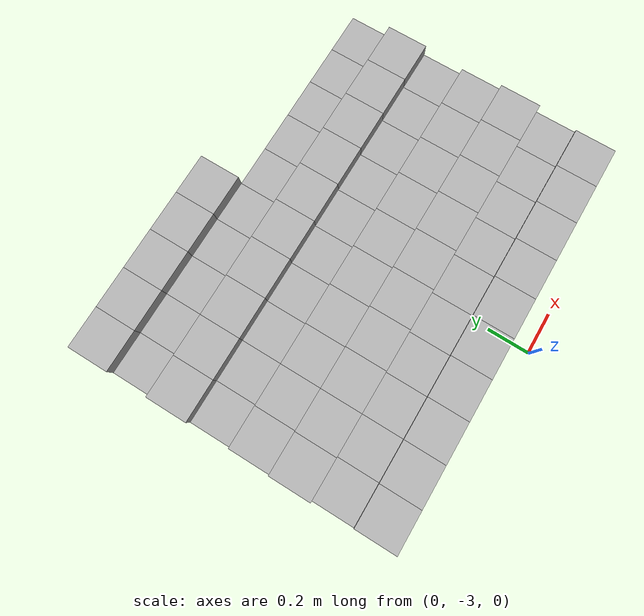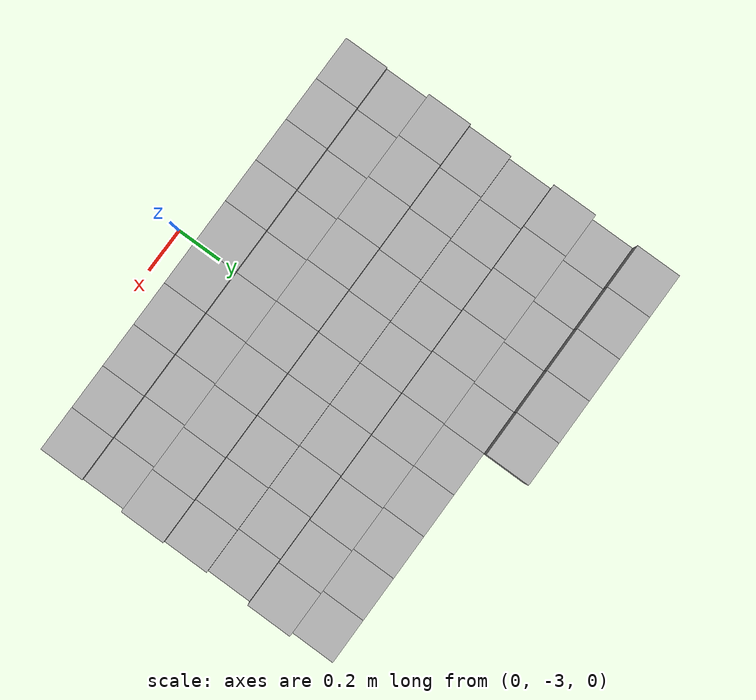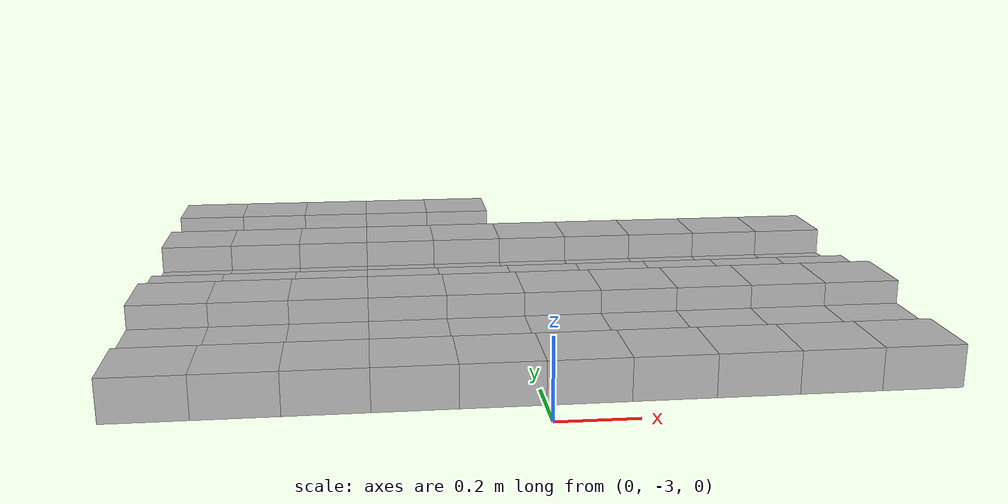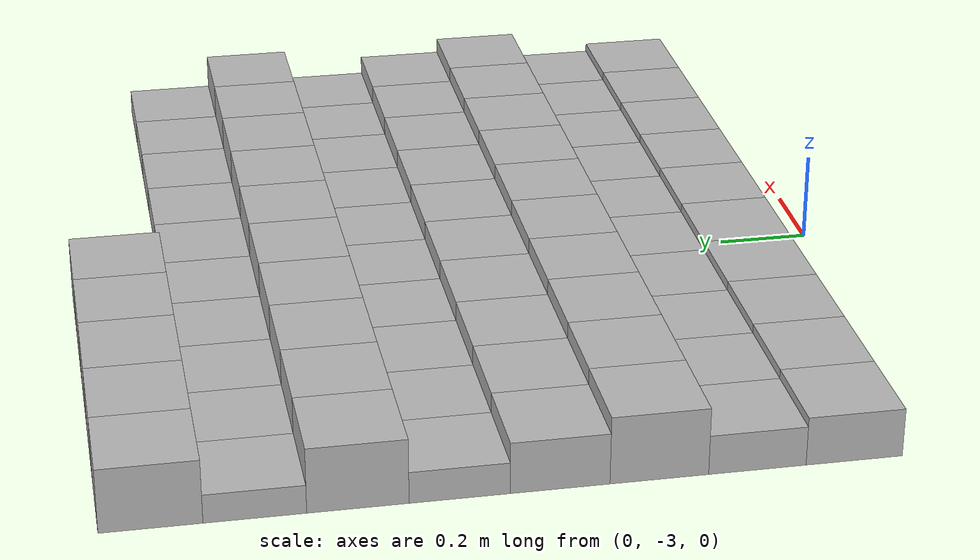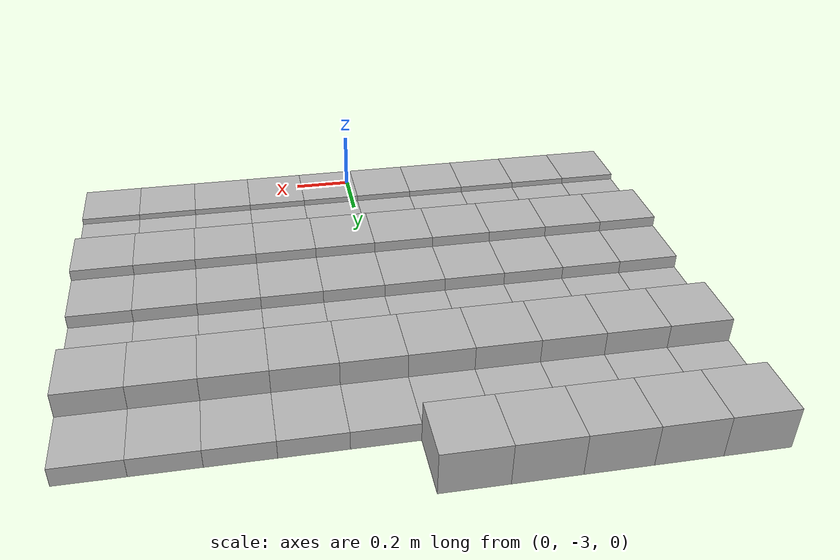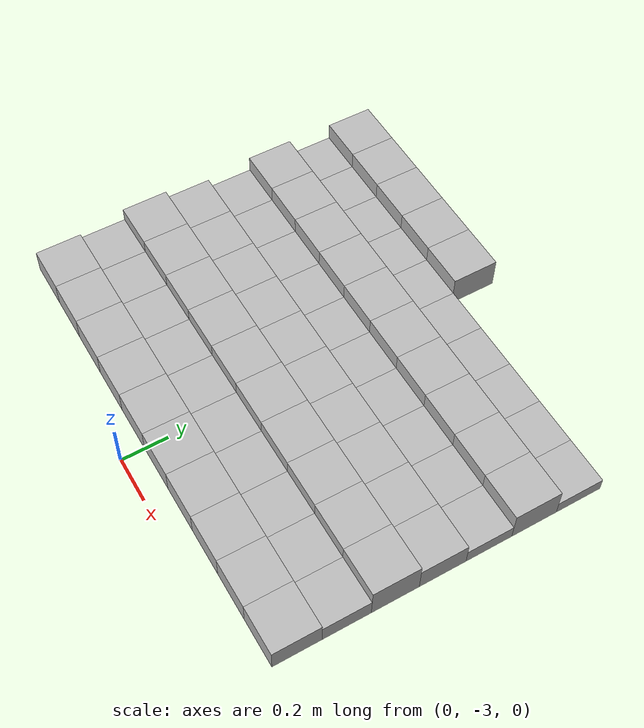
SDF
<sdf version="1.6">
 <model name="Terrain">
  <static>true</static>
  <link name="box_7_0">
   <pose>-0.9 -1.4 0.0700994147402 0 0 0</pose>
   <inertial>
    <mass>1.0</mass>
    <inertia><ixx>0.0</ixx><ixy>0.0</ixy><ixz>0.0</ixz><iyy>0.0</iyy><iyz>0.0</iyz><izz>0.0</izz></inertia>
   </inertial>
   <collision name="collision"><geometry><box><size>0.2 0.2 0.14019882948</size></box></geometry></collision>
   <visual name="visual"><geometry><box><size>0.2 0.2 0.14019882948</size></box></geometry></visual>
  </link>
  <link name="box_7_1">
   <pose>-0.7 -1.4 0.0700994147402 0 0 0</pose>
   <inertial>
    <mass>1.0</mass>
    <inertia><ixx>0.0</ixx><ixy>0.0</ixy><ixz>0.0</ixz><iyy>0.0</iyy><iyz>0.0</iyz><izz>0.0</izz></inertia>
   </inertial>
   <collision name="collision"><geometry><box><size>0.2 0.2 0.14019882948</size></box></geometry></collision>
   <visual name="visual"><geometry><box><size>0.2 0.2 0.14019882948</size></box></geometry></visual>
  </link>
  <link name="box_7_2">
   <pose>-0.5 -1.4 0.0700994147402 0 0 0</pose>
   <inertial>
    <mass>1.0</mass>
    <inertia><ixx>0.0</ixx><ixy>0.0</ixy><ixz>0.0</ixz><iyy>0.0</iyy><iyz>0.0</iyz><izz>0.0</izz></inertia>
   </inertial>
   <collision name="collision"><geometry><box><size>0.2 0.2 0.14019882948</size></box></geometry></collision>
   <visual name="visual"><geometry><box><size>0.2 0.2 0.14019882948</size></box></geometry></visual>
  </link>
  <link name="box_7_3">
   <pose>-0.3 -1.4 0.0700994147402 0 0 0</pose>
   <inertial>
    <mass>1.0</mass>
    <inertia><ixx>0.0</ixx><ixy>0.0</ixy><ixz>0.0</ixz><iyy>0.0</iyy><iyz>0.0</iyz><izz>0.0</izz></inertia>
   </inertial>
   <collision name="collision"><geometry><box><size>0.2 0.2 0.14019882948</size></box></geometry></collision>
   <visual name="visual"><geometry><box><size>0.2 0.2 0.14019882948</size></box></geometry></visual>
  </link>
  <link name="box_7_4">
   <pose>-0.1 -1.4 0.0700994147402 0 0 0</pose>
   <inertial>
    <mass>1.0</mass>
    <inertia><ixx>0.0</ixx><ixy>0.0</ixy><ixz>0.0</ixz><iyy>0.0</iyy><iyz>0.0</iyz><izz>0.0</izz></inertia>
   </inertial>
   <collision name="collision"><geometry><box><size>0.2 0.2 0.14019882948</size></box></geometry></collision>
   <visual name="visual"><geometry><box><size>0.2 0.2 0.14019882948</size></box></geometry></visual>
  </link>
  <link name="box_8_0">
   <pose>-0.9 -1.6 0.0313570824561 0 0 0</pose>
   <inertial>
    <mass>1.0</mass>
    <inertia><ixx>0.0</ixx><ixy>0.0</ixy><ixz>0.0</ixz><iyy>0.0</iyy><iyz>0.0</iyz><izz>0.0</izz></inertia>
   </inertial>
   <collision name="collision"><geometry><box><size>0.2 0.2 0.0627141649123</size></box></geometry></collision>
   <visual name="visual"><geometry><box><size>0.2 0.2 0.0627141649123</size></box></geometry></visual>
  </link>
  <link name="box_8_1">
   <pose>-0.7 -1.6 0.0313570824561 0 0 0</pose>
   <inertial>
    <mass>1.0</mass>
    <inertia><ixx>0.0</ixx><ixy>0.0</ixy><ixz>0.0</ixz><iyy>0.0</iyy><iyz>0.0</iyz><izz>0.0</izz></inertia>
   </inertial>
   <collision name="collision"><geometry><box><size>0.2 0.2 0.0627141649123</size></box></geometry></collision>
   <visual name="visual"><geometry><box><size>0.2 0.2 0.0627141649123</size></box></geometry></visual>
  </link>
  <link name="box_8_2">
   <pose>-0.5 -1.6 0.0313570824561 0 0 0</pose>
   <inertial>
    <mass>1.0</mass>
    <inertia><ixx>0.0</ixx><ixy>0.0</ixy><ixz>0.0</ixz><iyy>0.0</iyy><iyz>0.0</iyz><izz>0.0</izz></inertia>
   </inertial>
   <collision name="collision"><geometry><box><size>0.2 0.2 0.0627141649123</size></box></geometry></collision>
   <visual name="visual"><geometry><box><size>0.2 0.2 0.0627141649123</size></box></geometry></visual>
  </link>
  <link name="box_8_3">
   <pose>-0.3 -1.6 0.0313570824561 0 0 0</pose>
   <inertial>
    <mass>1.0</mass>
    <inertia><ixx>0.0</ixx><ixy>0.0</ixy><ixz>0.0</ixz><iyy>0.0</iyy><iyz>0.0</iyz><izz>0.0</izz></inertia>
   </inertial>
   <collision name="collision"><geometry><box><size>0.2 0.2 0.0627141649123</size></box></geometry></collision>
   <visual name="visual"><geometry><box><size>0.2 0.2 0.0627141649123</size></box></geometry></visual>
  </link>
  <link name="box_8_4">
   <pose>-0.1 -1.6 0.0313570824561 0 0 0</pose>
   <inertial>
    <mass>1.0</mass>
    <inertia><ixx>0.0</ixx><ixy>0.0</ixy><ixz>0.0</ixz><iyy>0.0</iyy><iyz>0.0</iyz><izz>0.0</izz></inertia>
   </inertial>
   <collision name="collision"><geometry><box><size>0.2 0.2 0.0627141649123</size></box></geometry></collision>
   <visual name="visual"><geometry><box><size>0.2 0.2 0.0627141649123</size></box></geometry></visual>
  </link>
  <link name="box_8_5">
   <pose>0.1 -1.6 0.0313570824561 0 0 0</pose>
   <inertial>
    <mass>1.0</mass>
    <inertia><ixx>0.0</ixx><ixy>0.0</ixy><ixz>0.0</ixz><iyy>0.0</iyy><iyz>0.0</iyz><izz>0.0</izz></inertia>
   </inertial>
   <collision name="collision"><geometry><box><size>0.2 0.2 0.0627141649123</size></box></geometry></collision>
   <visual name="visual"><geometry><box><size>0.2 0.2 0.0627141649123</size></box></geometry></visual>
  </link>
  <link name="box_8_6">
   <pose>0.3 -1.6 0.0313570824561 0 0 0</pose>
   <inertial>
    <mass>1.0</mass>
    <inertia><ixx>0.0</ixx><ixy>0.0</ixy><ixz>0.0</ixz><iyy>0.0</iyy><iyz>0.0</iyz><izz>0.0</izz></inertia>
   </inertial>
   <collision name="collision"><geometry><box><size>0.2 0.2 0.0627141649123</size></box></geometry></collision>
   <visual name="visual"><geometry><box><size>0.2 0.2 0.0627141649123</size></box></geometry></visual>
  </link>
  <link name="box_8_7">
   <pose>0.5 -1.6 0.0313570824561 0 0 0</pose>
   <inertial>
    <mass>1.0</mass>
    <inertia><ixx>0.0</ixx><ixy>0.0</ixy><ixz>0.0</ixz><iyy>0.0</iyy><iyz>0.0</iyz><izz>0.0</izz></inertia>
   </inertial>
   <collision name="collision"><geometry><box><size>0.2 0.2 0.0627141649123</size></box></geometry></collision>
   <visual name="visual"><geometry><box><size>0.2 0.2 0.0627141649123</size></box></geometry></visual>
  </link>
  <link name="box_8_8">
   <pose>0.7 -1.6 0.0313570824561 0 0 0</pose>
   <inertial>
    <mass>1.0</mass>
    <inertia><ixx>0.0</ixx><ixy>0.0</ixy><ixz>0.0</ixz><iyy>0.0</iyy><iyz>0.0</iyz><izz>0.0</izz></inertia>
   </inertial>
   <collision name="collision"><geometry><box><size>0.2 0.2 0.0627141649123</size></box></geometry></collision>
   <visual name="visual"><geometry><box><size>0.2 0.2 0.0627141649123</size></box></geometry></visual>
  </link>
  <link name="box_8_9">
   <pose>0.9 -1.6 0.0313570824561 0 0 0</pose>
   <inertial>
    <mass>1.0</mass>
    <inertia><ixx>0.0</ixx><ixy>0.0</ixy><ixz>0.0</ixz><iyy>0.0</iyy><iyz>0.0</iyz><izz>0.0</izz></inertia>
   </inertial>
   <collision name="collision"><geometry><box><size>0.2 0.2 0.0627141649123</size></box></geometry></collision>
   <visual name="visual"><geometry><box><size>0.2 0.2 0.0627141649123</size></box></geometry></visual>
  </link>
  <link name="box_9_0">
   <pose>-0.9 -1.8 0.0717361345322 0 0 0</pose>
   <inertial>
    <mass>1.0</mass>
    <inertia><ixx>0.0</ixx><ixy>0.0</ixy><ixz>0.0</ixz><iyy>0.0</iyy><iyz>0.0</iyz><izz>0.0</izz></inertia>
   </inertial>
   <collision name="collision"><geometry><box><size>0.2 0.2 0.143472269064</size></box></geometry></collision>
   <visual name="visual"><geometry><box><size>0.2 0.2 0.143472269064</size></box></geometry></visual>
  </link>
  <link name="box_9_1">
   <pose>-0.7 -1.8 0.0717361345322 0 0 0</pose>
   <inertial>
    <mass>1.0</mass>
    <inertia><ixx>0.0</ixx><ixy>0.0</ixy><ixz>0.0</ixz><iyy>0.0</iyy><iyz>0.0</iyz><izz>0.0</izz></inertia>
   </inertial>
   <collision name="collision"><geometry><box><size>0.2 0.2 0.143472269064</size></box></geometry></collision>
   <visual name="visual"><geometry><box><size>0.2 0.2 0.143472269064</size></box></geometry></visual>
  </link>
  <link name="box_9_2">
   <pose>-0.5 -1.8 0.0717361345322 0 0 0</pose>
   <inertial>
    <mass>1.0</mass>
    <inertia><ixx>0.0</ixx><ixy>0.0</ixy><ixz>0.0</ixz><iyy>0.0</iyy><iyz>0.0</iyz><izz>0.0</izz></inertia>
   </inertial>
   <collision name="collision"><geometry><box><size>0.2 0.2 0.143472269064</size></box></geometry></collision>
   <visual name="visual"><geometry><box><size>0.2 0.2 0.143472269064</size></box></geometry></visual>
  </link>
  <link name="box_9_3">
   <pose>-0.3 -1.8 0.0717361345322 0 0 0</pose>
   <inertial>
    <mass>1.0</mass>
    <inertia><ixx>0.0</ixx><ixy>0.0</ixy><ixz>0.0</ixz><iyy>0.0</iyy><iyz>0.0</iyz><izz>0.0</izz></inertia>
   </inertial>
   <collision name="collision"><geometry><box><size>0.2 0.2 0.143472269064</size></box></geometry></collision>
   <visual name="visual"><geometry><box><size>0.2 0.2 0.143472269064</size></box></geometry></visual>
  </link>
  <link name="box_9_4">
   <pose>-0.1 -1.8 0.0717361345322 0 0 0</pose>
   <inertial>
    <mass>1.0</mass>
    <inertia><ixx>0.0</ixx><ixy>0.0</ixy><ixz>0.0</ixz><iyy>0.0</iyy><iyz>0.0</iyz><izz>0.0</izz></inertia>
   </inertial>
   <collision name="collision"><geometry><box><size>0.2 0.2 0.143472269064</size></box></geometry></collision>
   <visual name="visual"><geometry><box><size>0.2 0.2 0.143472269064</size></box></geometry></visual>
  </link>
  <link name="box_9_5">
   <pose>0.1 -1.8 0.0717361345322 0 0 0</pose>
   <inertial>
    <mass>1.0</mass>
    <inertia><ixx>0.0</ixx><ixy>0.0</ixy><ixz>0.0</ixz><iyy>0.0</iyy><iyz>0.0</iyz><izz>0.0</izz></inertia>
   </inertial>
   <collision name="collision"><geometry><box><size>0.2 0.2 0.143472269064</size></box></geometry></collision>
   <visual name="visual"><geometry><box><size>0.2 0.2 0.143472269064</size></box></geometry></visual>
  </link>
  <link name="box_9_6">
   <pose>0.3 -1.8 0.0717361345322 0 0 0</pose>
   <inertial>
    <mass>1.0</mass>
    <inertia><ixx>0.0</ixx><ixy>0.0</ixy><ixz>0.0</ixz><iyy>0.0</iyy><iyz>0.0</iyz><izz>0.0</izz></inertia>
   </inertial>
   <collision name="collision"><geometry><box><size>0.2 0.2 0.143472269064</size></box></geometry></collision>
   <visual name="visual"><geometry><box><size>0.2 0.2 0.143472269064</size></box></geometry></visual>
  </link>
  <link name="box_9_7">
   <pose>0.5 -1.8 0.0717361345322 0 0 0</pose>
   <inertial>
    <mass>1.0</mass>
    <inertia><ixx>0.0</ixx><ixy>0.0</ixy><ixz>0.0</ixz><iyy>0.0</iyy><iyz>0.0</iyz><izz>0.0</izz></inertia>
   </inertial>
   <collision name="collision"><geometry><box><size>0.2 0.2 0.143472269064</size></box></geometry></collision>
   <visual name="visual"><geometry><box><size>0.2 0.2 0.143472269064</size></box></geometry></visual>
  </link>
  <link name="box_9_8">
   <pose>0.7 -1.8 0.0717361345322 0 0 0</pose>
   <inertial>
    <mass>1.0</mass>
    <inertia><ixx>0.0</ixx><ixy>0.0</ixy><ixz>0.0</ixz><iyy>0.0</iyy><iyz>0.0</iyz><izz>0.0</izz></inertia>
   </inertial>
   <collision name="collision"><geometry><box><size>0.2 0.2 0.143472269064</size></box></geometry></collision>
   <visual name="visual"><geometry><box><size>0.2 0.2 0.143472269064</size></box></geometry></visual>
  </link>
  <link name="box_9_9">
   <pose>0.9 -1.8 0.0717361345322 0 0 0</pose>
   <inertial>
    <mass>1.0</mass>
    <inertia><ixx>0.0</ixx><ixy>0.0</ixy><ixz>0.0</ixz><iyy>0.0</iyy><iyz>0.0</iyz><izz>0.0</izz></inertia>
   </inertial>
   <collision name="collision"><geometry><box><size>0.2 0.2 0.143472269064</size></box></geometry></collision>
   <visual name="visual"><geometry><box><size>0.2 0.2 0.143472269064</size></box></geometry></visual>
  </link>
  <link name="box_10_0">
   <pose>-0.9 -2.0 0.0347215386075 0 0 0</pose>
   <inertial>
    <mass>1.0</mass>
    <inertia><ixx>0.0</ixx><ixy>0.0</ixy><ixz>0.0</ixz><iyy>0.0</iyy><iyz>0.0</iyz><izz>0.0</izz></inertia>
   </inertial>
   <collision name="collision"><geometry><box><size>0.2 0.2 0.069443077215</size></box></geometry></collision>
   <visual name="visual"><geometry><box><size>0.2 0.2 0.069443077215</size></box></geometry></visual>
  </link>
  <link name="box_10_1">
   <pose>-0.7 -2.0 0.0347215386075 0 0 0</pose>
   <inertial>
    <mass>1.0</mass>
    <inertia><ixx>0.0</ixx><ixy>0.0</ixy><ixz>0.0</ixz><iyy>0.0</iyy><iyz>0.0</iyz><izz>0.0</izz></inertia>
   </inertial>
   <collision name="collision"><geometry><box><size>0.2 0.2 0.069443077215</size></box></geometry></collision>
   <visual name="visual"><geometry><box><size>0.2 0.2 0.069443077215</size></box></geometry></visual>
  </link>
  <link name="box_10_2">
   <pose>-0.5 -2.0 0.0347215386075 0 0 0</pose>
   <inertial>
    <mass>1.0</mass>
    <inertia><ixx>0.0</ixx><ixy>0.0</ixy><ixz>0.0</ixz><iyy>0.0</iyy><iyz>0.0</iyz><izz>0.0</izz></inertia>
   </inertial>
   <collision name="collision"><geometry><box><size>0.2 0.2 0.069443077215</size></box></geometry></collision>
   <visual name="visual"><geometry><box><size>0.2 0.2 0.069443077215</size></box></geometry></visual>
  </link>
  <link name="box_10_3">
   <pose>-0.3 -2.0 0.0347215386075 0 0 0</pose>
   <inertial>
    <mass>1.0</mass>
    <inertia><ixx>0.0</ixx><ixy>0.0</ixy><ixz>0.0</ixz><iyy>0.0</iyy><iyz>0.0</iyz><izz>0.0</izz></inertia>
   </inertial>
   <collision name="collision"><geometry><box><size>0.2 0.2 0.069443077215</size></box></geometry></collision>
   <visual name="visual"><geometry><box><size>0.2 0.2 0.069443077215</size></box></geometry></visual>
  </link>
  <link name="box_10_4">
   <pose>-0.1 -2.0 0.0347215386075 0 0 0</pose>
   <inertial>
    <mass>1.0</mass>
    <inertia><ixx>0.0</ixx><ixy>0.0</ixy><ixz>0.0</ixz><iyy>0.0</iyy><iyz>0.0</iyz><izz>0.0</izz></inertia>
   </inertial>
   <collision name="collision"><geometry><box><size>0.2 0.2 0.069443077215</size></box></geometry></collision>
   <visual name="visual"><geometry><box><size>0.2 0.2 0.069443077215</size></box></geometry></visual>
  </link>
  <link name="box_10_5">
   <pose>0.1 -2.0 0.0347215386075 0 0 0</pose>
   <inertial>
    <mass>1.0</mass>
    <inertia><ixx>0.0</ixx><ixy>0.0</ixy><ixz>0.0</ixz><iyy>0.0</iyy><iyz>0.0</iyz><izz>0.0</izz></inertia>
   </inertial>
   <collision name="collision"><geometry><box><size>0.2 0.2 0.069443077215</size></box></geometry></collision>
   <visual name="visual"><geometry><box><size>0.2 0.2 0.069443077215</size></box></geometry></visual>
  </link>
  <link name="box_10_6">
   <pose>0.3 -2.0 0.0347215386075 0 0 0</pose>
   <inertial>
    <mass>1.0</mass>
    <inertia><ixx>0.0</ixx><ixy>0.0</ixy><ixz>0.0</ixz><iyy>0.0</iyy><iyz>0.0</iyz><izz>0.0</izz></inertia>
   </inertial>
   <collision name="collision"><geometry><box><size>0.2 0.2 0.069443077215</size></box></geometry></collision>
   <visual name="visual"><geometry><box><size>0.2 0.2 0.069443077215</size></box></geometry></visual>
  </link>
  <link name="box_10_7">
   <pose>0.5 -2.0 0.0347215386075 0 0 0</pose>
   <inertial>
    <mass>1.0</mass>
    <inertia><ixx>0.0</ixx><ixy>0.0</ixy><ixz>0.0</ixz><iyy>0.0</iyy><iyz>0.0</iyz><izz>0.0</izz></inertia>
   </inertial>
   <collision name="collision"><geometry><box><size>0.2 0.2 0.069443077215</size></box></geometry></collision>
   <visual name="visual"><geometry><box><size>0.2 0.2 0.069443077215</size></box></geometry></visual>
  </link>
  <link name="box_10_8">
   <pose>0.7 -2.0 0.0347215386075 0 0 0</pose>
   <inertial>
    <mass>1.0</mass>
    <inertia><ixx>0.0</ixx><ixy>0.0</ixy><ixz>0.0</ixz><iyy>0.0</iyy><iyz>0.0</iyz><izz>0.0</izz></inertia>
   </inertial>
   <collision name="collision"><geometry><box><size>0.2 0.2 0.069443077215</size></box></geometry></collision>
   <visual name="visual"><geometry><box><size>0.2 0.2 0.069443077215</size></box></geometry></visual>
  </link>
  <link name="box_10_9">
   <pose>0.9 -2.0 0.0347215386075 0 0 0</pose>
   <inertial>
    <mass>1.0</mass>
    <inertia><ixx>0.0</ixx><ixy>0.0</ixy><ixz>0.0</ixz><iyy>0.0</iyy><iyz>0.0</iyz><izz>0.0</izz></inertia>
   </inertial>
   <collision name="collision"><geometry><box><size>0.2 0.2 0.069443077215</size></box></geometry></collision>
   <visual name="visual"><geometry><box><size>0.2 0.2 0.069443077215</size></box></geometry></visual>
  </link>
  <link name="box_11_0">
   <pose>-0.9 -2.2 0.0567866208942 0 0 0</pose>
   <inertial>
    <mass>1.0</mass>
    <inertia><ixx>0.0</ixx><ixy>0.0</ixy><ixz>0.0</ixz><iyy>0.0</iyy><iyz>0.0</iyz><izz>0.0</izz></inertia>
   </inertial>
   <collision name="collision"><geometry><box><size>0.2 0.2 0.113573241788</size></box></geometry></collision>
   <visual name="visual"><geometry><box><size>0.2 0.2 0.113573241788</size></box></geometry></visual>
  </link>
  <link name="box_11_1">
   <pose>-0.7 -2.2 0.0567866208942 0 0 0</pose>
   <inertial>
    <mass>1.0</mass>
    <inertia><ixx>0.0</ixx><ixy>0.0</ixy><ixz>0.0</ixz><iyy>0.0</iyy><iyz>0.0</iyz><izz>0.0</izz></inertia>
   </inertial>
   <collision name="collision"><geometry><box><size>0.2 0.2 0.113573241788</size></box></geometry></collision>
   <visual name="visual"><geometry><box><size>0.2 0.2 0.113573241788</size></box></geometry></visual>
  </link>
  <link name="box_11_2">
   <pose>-0.5 -2.2 0.0567866208942 0 0 0</pose>
   <inertial>
    <mass>1.0</mass>
    <inertia><ixx>0.0</ixx><ixy>0.0</ixy><ixz>0.0</ixz><iyy>0.0</iyy><iyz>0.0</iyz><izz>0.0</izz></inertia>
   </inertial>
   <collision name="collision"><geometry><box><size>0.2 0.2 0.113573241788</size></box></geometry></collision>
   <visual name="visual"><geometry><box><size>0.2 0.2 0.113573241788</size></box></geometry></visual>
  </link>
  <link name="box_11_3">
   <pose>-0.3 -2.2 0.0567866208942 0 0 0</pose>
   <inertial>
    <mass>1.0</mass>
    <inertia><ixx>0.0</ixx><ixy>0.0</ixy><ixz>0.0</ixz><iyy>0.0</iyy><iyz>0.0</iyz><izz>0.0</izz></inertia>
   </inertial>
   <collision name="collision"><geometry><box><size>0.2 0.2 0.113573241788</size></box></geometry></collision>
   <visual name="visual"><geometry><box><size>0.2 0.2 0.113573241788</size></box></geometry></visual>
  </link>
  <link name="box_11_4">
   <pose>-0.1 -2.2 0.0567866208942 0 0 0</pose>
   <inertial>
    <mass>1.0</mass>
    <inertia><ixx>0.0</ixx><ixy>0.0</ixy><ixz>0.0</ixz><iyy>0.0</iyy><iyz>0.0</iyz><izz>0.0</izz></inertia>
   </inertial>
   <collision name="collision"><geometry><box><size>0.2 0.2 0.113573241788</size></box></geometry></collision>
   <visual name="visual"><geometry><box><size>0.2 0.2 0.113573241788</size></box></geometry></visual>
  </link>
  <link name="box_11_5">
   <pose>0.1 -2.2 0.0567866208942 0 0 0</pose>
   <inertial>
    <mass>1.0</mass>
    <inertia><ixx>0.0</ixx><ixy>0.0</ixy><ixz>0.0</ixz><iyy>0.0</iyy><iyz>0.0</iyz><izz>0.0</izz></inertia>
   </inertial>
   <collision name="collision"><geometry><box><size>0.2 0.2 0.113573241788</size></box></geometry></collision>
   <visual name="visual"><geometry><box><size>0.2 0.2 0.113573241788</size></box></geometry></visual>
  </link>
  <link name="box_11_6">
   <pose>0.3 -2.2 0.0567866208942 0 0 0</pose>
   <inertial>
    <mass>1.0</mass>
    <inertia><ixx>0.0</ixx><ixy>0.0</ixy><ixz>0.0</ixz><iyy>0.0</iyy><iyz>0.0</iyz><izz>0.0</izz></inertia>
   </inertial>
   <collision name="collision"><geometry><box><size>0.2 0.2 0.113573241788</size></box></geometry></collision>
   <visual name="visual"><geometry><box><size>0.2 0.2 0.113573241788</size></box></geometry></visual>
  </link>
  <link name="box_11_7">
   <pose>0.5 -2.2 0.0567866208942 0 0 0</pose>
   <inertial>
    <mass>1.0</mass>
    <inertia><ixx>0.0</ixx><ixy>0.0</ixy><ixz>0.0</ixz><iyy>0.0</iyy><iyz>0.0</iyz><izz>0.0</izz></inertia>
   </inertial>
   <collision name="collision"><geometry><box><size>0.2 0.2 0.113573241788</size></box></geometry></collision>
   <visual name="visual"><geometry><box><size>0.2 0.2 0.113573241788</size></box></geometry></visual>
  </link>
  <link name="box_11_8">
   <pose>0.7 -2.2 0.0567866208942 0 0 0</pose>
   <inertial>
    <mass>1.0</mass>
    <inertia><ixx>0.0</ixx><ixy>0.0</ixy><ixz>0.0</ixz><iyy>0.0</iyy><iyz>0.0</iyz><izz>0.0</izz></inertia>
   </inertial>
   <collision name="collision"><geometry><box><size>0.2 0.2 0.113573241788</size></box></geometry></collision>
   <visual name="visual"><geometry><box><size>0.2 0.2 0.113573241788</size></box></geometry></visual>
  </link>
  <link name="box_11_9">
   <pose>0.9 -2.2 0.0567866208942 0 0 0</pose>
   <inertial>
    <mass>1.0</mass>
    <inertia><ixx>0.0</ixx><ixy>0.0</ixy><ixz>0.0</ixz><iyy>0.0</iyy><iyz>0.0</iyz><izz>0.0</izz></inertia>
   </inertial>
   <collision name="collision"><geometry><box><size>0.2 0.2 0.113573241788</size></box></geometry></collision>
   <visual name="visual"><geometry><box><size>0.2 0.2 0.113573241788</size></box></geometry></visual>
  </link>
  <link name="box_12_0">
   <pose>-0.9 -2.4 0.0748629495063 0 0 0</pose>
   <inertial>
    <mass>1.0</mass>
    <inertia><ixx>0.0</ixx><ixy>0.0</ixy><ixz>0.0</ixz><iyy>0.0</iyy><iyz>0.0</iyz><izz>0.0</izz></inertia>
   </inertial>
   <collision name="collision"><geometry><box><size>0.2 0.2 0.149725899013</size></box></geometry></collision>
   <visual name="visual"><geometry><box><size>0.2 0.2 0.149725899013</size></box></geometry></visual>
  </link>
  <link name="box_12_1">
   <pose>-0.7 -2.4 0.0748629495063 0 0 0</pose>
   <inertial>
    <mass>1.0</mass>
    <inertia><ixx>0.0</ixx><ixy>0.0</ixy><ixz>0.0</ixz><iyy>0.0</iyy><iyz>0.0</iyz><izz>0.0</izz></inertia>
   </inertial>
   <collision name="collision"><geometry><box><size>0.2 0.2 0.149725899013</size></box></geometry></collision>
   <visual name="visual"><geometry><box><size>0.2 0.2 0.149725899013</size></box></geometry></visual>
  </link>
  <link name="box_12_2">
   <pose>-0.5 -2.4 0.0748629495063 0 0 0</pose>
   <inertial>
    <mass>1.0</mass>
    <inertia><ixx>0.0</ixx><ixy>0.0</ixy><ixz>0.0</ixz><iyy>0.0</iyy><iyz>0.0</iyz><izz>0.0</izz></inertia>
   </inertial>
   <collision name="collision"><geometry><box><size>0.2 0.2 0.149725899013</size></box></geometry></collision>
   <visual name="visual"><geometry><box><size>0.2 0.2 0.149725899013</size></box></geometry></visual>
  </link>
  <link name="box_12_3">
   <pose>-0.3 -2.4 0.0748629495063 0 0 0</pose>
   <inertial>
    <mass>1.0</mass>
    <inertia><ixx>0.0</ixx><ixy>0.0</ixy><ixz>0.0</ixz><iyy>0.0</iyy><iyz>0.0</iyz><izz>0.0</izz></inertia>
   </inertial>
   <collision name="collision"><geometry><box><size>0.2 0.2 0.149725899013</size></box></geometry></collision>
   <visual name="visual"><geometry><box><size>0.2 0.2 0.149725899013</size></box></geometry></visual>
  </link>
  <link name="box_12_4">
   <pose>-0.1 -2.4 0.0748629495063 0 0 0</pose>
   <inertial>
    <mass>1.0</mass>
    <inertia><ixx>0.0</ixx><ixy>0.0</ixy><ixz>0.0</ixz><iyy>0.0</iyy><iyz>0.0</iyz><izz>0.0</izz></inertia>
   </inertial>
   <collision name="collision"><geometry><box><size>0.2 0.2 0.149725899013</size></box></geometry></collision>
   <visual name="visual"><geometry><box><size>0.2 0.2 0.149725899013</size></box></geometry></visual>
  </link>
  <link name="box_12_5">
   <pose>0.1 -2.4 0.0748629495063 0 0 0</pose>
   <inertial>
    <mass>1.0</mass>
    <inertia><ixx>0.0</ixx><ixy>0.0</ixy><ixz>0.0</ixz><iyy>0.0</iyy><iyz>0.0</iyz><izz>0.0</izz></inertia>
   </inertial>
   <collision name="collision"><geometry><box><size>0.2 0.2 0.149725899013</size></box></geometry></collision>
   <visual name="visual"><geometry><box><size>0.2 0.2 0.149725899013</size></box></geometry></visual>
  </link>
  <link name="box_12_6">
   <pose>0.3 -2.4 0.0748629495063 0 0 0</pose>
   <inertial>
    <mass>1.0</mass>
    <inertia><ixx>0.0</ixx><ixy>0.0</ixy><ixz>0.0</ixz><iyy>0.0</iyy><iyz>0.0</iyz><izz>0.0</izz></inertia>
   </inertial>
   <collision name="collision"><geometry><box><size>0.2 0.2 0.149725899013</size></box></geometry></collision>
   <visual name="visual"><geometry><box><size>0.2 0.2 0.149725899013</size></box></geometry></visual>
  </link>
  <link name="box_12_7">
   <pose>0.5 -2.4 0.0748629495063 0 0 0</pose>
   <inertial>
    <mass>1.0</mass>
    <inertia><ixx>0.0</ixx><ixy>0.0</ixy><ixz>0.0</ixz><iyy>0.0</iyy><iyz>0.0</iyz><izz>0.0</izz></inertia>
   </inertial>
   <collision name="collision"><geometry><box><size>0.2 0.2 0.149725899013</size></box></geometry></collision>
   <visual name="visual"><geometry><box><size>0.2 0.2 0.149725899013</size></box></geometry></visual>
  </link>
  <link name="box_12_8">
   <pose>0.7 -2.4 0.0748629495063 0 0 0</pose>
   <inertial>
    <mass>1.0</mass>
    <inertia><ixx>0.0</ixx><ixy>0.0</ixy><ixz>0.0</ixz><iyy>0.0</iyy><iyz>0.0</iyz><izz>0.0</izz></inertia>
   </inertial>
   <collision name="collision"><geometry><box><size>0.2 0.2 0.149725899013</size></box></geometry></collision>
   <visual name="visual"><geometry><box><size>0.2 0.2 0.149725899013</size></box></geometry></visual>
  </link>
  <link name="box_12_9">
   <pose>0.9 -2.4 0.0748629495063 0 0 0</pose>
   <inertial>
    <mass>1.0</mass>
    <inertia><ixx>0.0</ixx><ixy>0.0</ixy><ixz>0.0</ixz><iyy>0.0</iyy><iyz>0.0</iyz><izz>0.0</izz></inertia>
   </inertial>
   <collision name="collision"><geometry><box><size>0.2 0.2 0.149725899013</size></box></geometry></collision>
   <visual name="visual"><geometry><box><size>0.2 0.2 0.149725899013</size></box></geometry></visual>
  </link>
  <link name="box_13_0">
   <pose>-0.9 -2.6 0.0436734887192 0 0 0</pose>
   <inertial>
    <mass>1.0</mass>
    <inertia><ixx>0.0</ixx><ixy>0.0</ixy><ixz>0.0</ixz><iyy>0.0</iyy><iyz>0.0</iyz><izz>0.0</izz></inertia>
   </inertial>
   <collision name="collision"><geometry><box><size>0.2 0.2 0.0873469774384</size></box></geometry></collision>
   <visual name="visual"><geometry><box><size>0.2 0.2 0.0873469774384</size></box></geometry></visual>
  </link>
  <link name="box_13_1">
   <pose>-0.7 -2.6 0.0436734887192 0 0 0</pose>
   <inertial>
    <mass>1.0</mass>
    <inertia><ixx>0.0</ixx><ixy>0.0</ixy><ixz>0.0</ixz><iyy>0.0</iyy><iyz>0.0</iyz><izz>0.0</izz></inertia>
   </inertial>
   <collision name="collision"><geometry><box><size>0.2 0.2 0.0873469774384</size></box></geometry></collision>
   <visual name="visual"><geometry><box><size>0.2 0.2 0.0873469774384</size></box></geometry></visual>
  </link>
  <link name="box_13_2">
   <pose>-0.5 -2.6 0.0436734887192 0 0 0</pose>
   <inertial>
    <mass>1.0</mass>
    <inertia><ixx>0.0</ixx><ixy>0.0</ixy><ixz>0.0</ixz><iyy>0.0</iyy><iyz>0.0</iyz><izz>0.0</izz></inertia>
   </inertial>
   <collision name="collision"><geometry><box><size>0.2 0.2 0.0873469774384</size></box></geometry></collision>
   <visual name="visual"><geometry><box><size>0.2 0.2 0.0873469774384</size></box></geometry></visual>
  </link>
  <link name="box_13_3">
   <pose>-0.3 -2.6 0.0436734887192 0 0 0</pose>
   <inertial>
    <mass>1.0</mass>
    <inertia><ixx>0.0</ixx><ixy>0.0</ixy><ixz>0.0</ixz><iyy>0.0</iyy><iyz>0.0</iyz><izz>0.0</izz></inertia>
   </inertial>
   <collision name="collision"><geometry><box><size>0.2 0.2 0.0873469774384</size></box></geometry></collision>
   <visual name="visual"><geometry><box><size>0.2 0.2 0.0873469774384</size></box></geometry></visual>
  </link>
  <link name="box_13_4">
   <pose>-0.1 -2.6 0.0436734887192 0 0 0</pose>
   <inertial>
    <mass>1.0</mass>
    <inertia><ixx>0.0</ixx><ixy>0.0</ixy><ixz>0.0</ixz><iyy>0.0</iyy><iyz>0.0</iyz><izz>0.0</izz></inertia>
   </inertial>
   <collision name="collision"><geometry><box><size>0.2 0.2 0.0873469774384</size></box></geometry></collision>
   <visual name="visual"><geometry><box><size>0.2 0.2 0.0873469774384</size></box></geometry></visual>
  </link>
  <link name="box_13_5">
   <pose>0.1 -2.6 0.0436734887192 0 0 0</pose>
   <inertial>
    <mass>1.0</mass>
    <inertia><ixx>0.0</ixx><ixy>0.0</ixy><ixz>0.0</ixz><iyy>0.0</iyy><iyz>0.0</iyz><izz>0.0</izz></inertia>
   </inertial>
   <collision name="collision"><geometry><box><size>0.2 0.2 0.0873469774384</size></box></geometry></collision>
   <visual name="visual"><geometry><box><size>0.2 0.2 0.0873469774384</size></box></geometry></visual>
  </link>
  <link name="box_13_6">
   <pose>0.3 -2.6 0.0436734887192 0 0 0</pose>
   <inertial>
    <mass>1.0</mass>
    <inertia><ixx>0.0</ixx><ixy>0.0</ixy><ixz>0.0</ixz><iyy>0.0</iyy><iyz>0.0</iyz><izz>0.0</izz></inertia>
   </inertial>
   <collision name="collision"><geometry><box><size>0.2 0.2 0.0873469774384</size></box></geometry></collision>
   <visual name="visual"><geometry><box><size>0.2 0.2 0.0873469774384</size></box></geometry></visual>
  </link>
  <link name="box_13_7">
   <pose>0.5 -2.6 0.0436734887192 0 0 0</pose>
   <inertial>
    <mass>1.0</mass>
    <inertia><ixx>0.0</ixx><ixy>0.0</ixy><ixz>0.0</ixz><iyy>0.0</iyy><iyz>0.0</iyz><izz>0.0</izz></inertia>
   </inertial>
   <collision name="collision"><geometry><box><size>0.2 0.2 0.0873469774384</size></box></geometry></collision>
   <visual name="visual"><geometry><box><size>0.2 0.2 0.0873469774384</size></box></geometry></visual>
  </link>
  <link name="box_13_8">
   <pose>0.7 -2.6 0.0436734887192 0 0 0</pose>
   <inertial>
    <mass>1.0</mass>
    <inertia><ixx>0.0</ixx><ixy>0.0</ixy><ixz>0.0</ixz><iyy>0.0</iyy><iyz>0.0</iyz><izz>0.0</izz></inertia>
   </inertial>
   <collision name="collision"><geometry><box><size>0.2 0.2 0.0873469774384</size></box></geometry></collision>
   <visual name="visual"><geometry><box><size>0.2 0.2 0.0873469774384</size></box></geometry></visual>
  </link>
  <link name="box_13_9">
   <pose>0.9 -2.6 0.0436734887192 0 0 0</pose>
   <inertial>
    <mass>1.0</mass>
    <inertia><ixx>0.0</ixx><ixy>0.0</ixy><ixz>0.0</ixz><iyy>0.0</iyy><iyz>0.0</iyz><izz>0.0</izz></inertia>
   </inertial>
   <collision name="collision"><geometry><box><size>0.2 0.2 0.0873469774384</size></box></geometry></collision>
   <visual name="visual"><geometry><box><size>0.2 0.2 0.0873469774384</size></box></geometry></visual>
  </link>
  <link name="box_14_0">
   <pose>-0.9 -2.8 0.0538389694209 0 0 0</pose>
   <inertial>
    <mass>1.0</mass>
    <inertia><ixx>0.0</ixx><ixy>0.0</ixy><ixz>0.0</ixz><iyy>0.0</iyy><iyz>0.0</iyz><izz>0.0</izz></inertia>
   </inertial>
   <collision name="collision"><geometry><box><size>0.2 0.2 0.107677938842</size></box></geometry></collision>
   <visual name="visual"><geometry><box><size>0.2 0.2 0.107677938842</size></box></geometry></visual>
  </link>
  <link name="box_14_1">
   <pose>-0.7 -2.8 0.0538389694209 0 0 0</pose>
   <inertial>
    <mass>1.0</mass>
    <inertia><ixx>0.0</ixx><ixy>0.0</ixy><ixz>0.0</ixz><iyy>0.0</iyy><iyz>0.0</iyz><izz>0.0</izz></inertia>
   </inertial>
   <collision name="collision"><geometry><box><size>0.2 0.2 0.107677938842</size></box></geometry></collision>
   <visual name="visual"><geometry><box><size>0.2 0.2 0.107677938842</size></box></geometry></visual>
  </link>
  <link name="box_14_2">
   <pose>-0.5 -2.8 0.0538389694209 0 0 0</pose>
   <inertial>
    <mass>1.0</mass>
    <inertia><ixx>0.0</ixx><ixy>0.0</ixy><ixz>0.0</ixz><iyy>0.0</iyy><iyz>0.0</iyz><izz>0.0</izz></inertia>
   </inertial>
   <collision name="collision"><geometry><box><size>0.2 0.2 0.107677938842</size></box></geometry></collision>
   <visual name="visual"><geometry><box><size>0.2 0.2 0.107677938842</size></box></geometry></visual>
  </link>
  <link name="box_14_3">
   <pose>-0.3 -2.8 0.0538389694209 0 0 0</pose>
   <inertial>
    <mass>1.0</mass>
    <inertia><ixx>0.0</ixx><ixy>0.0</ixy><ixz>0.0</ixz><iyy>0.0</iyy><iyz>0.0</iyz><izz>0.0</izz></inertia>
   </inertial>
   <collision name="collision"><geometry><box><size>0.2 0.2 0.107677938842</size></box></geometry></collision>
   <visual name="visual"><geometry><box><size>0.2 0.2 0.107677938842</size></box></geometry></visual>
  </link>
  <link name="box_14_4">
   <pose>-0.1 -2.8 0.0538389694209 0 0 0</pose>
   <inertial>
    <mass>1.0</mass>
    <inertia><ixx>0.0</ixx><ixy>0.0</ixy><ixz>0.0</ixz><iyy>0.0</iyy><iyz>0.0</iyz><izz>0.0</izz></inertia>
   </inertial>
   <collision name="collision"><geometry><box><size>0.2 0.2 0.107677938842</size></box></geometry></collision>
   <visual name="visual"><geometry><box><size>0.2 0.2 0.107677938842</size></box></geometry></visual>
  </link>
  <link name="box_14_5">
   <pose>0.1 -2.8 0.0538389694209 0 0 0</pose>
   <inertial>
    <mass>1.0</mass>
    <inertia><ixx>0.0</ixx><ixy>0.0</ixy><ixz>0.0</ixz><iyy>0.0</iyy><iyz>0.0</iyz><izz>0.0</izz></inertia>
   </inertial>
   <collision name="collision"><geometry><box><size>0.2 0.2 0.107677938842</size></box></geometry></collision>
   <visual name="visual"><geometry><box><size>0.2 0.2 0.107677938842</size></box></geometry></visual>
  </link>
  <link name="box_14_6">
   <pose>0.3 -2.8 0.0538389694209 0 0 0</pose>
   <inertial>
    <mass>1.0</mass>
    <inertia><ixx>0.0</ixx><ixy>0.0</ixy><ixz>0.0</ixz><iyy>0.0</iyy><iyz>0.0</iyz><izz>0.0</izz></inertia>
   </inertial>
   <collision name="collision"><geometry><box><size>0.2 0.2 0.107677938842</size></box></geometry></collision>
   <visual name="visual"><geometry><box><size>0.2 0.2 0.107677938842</size></box></geometry></visual>
  </link>
  <link name="box_14_7">
   <pose>0.5 -2.8 0.0538389694209 0 0 0</pose>
   <inertial>
    <mass>1.0</mass>
    <inertia><ixx>0.0</ixx><ixy>0.0</ixy><ixz>0.0</ixz><iyy>0.0</iyy><iyz>0.0</iyz><izz>0.0</izz></inertia>
   </inertial>
   <collision name="collision"><geometry><box><size>0.2 0.2 0.107677938842</size></box></geometry></collision>
   <visual name="visual"><geometry><box><size>0.2 0.2 0.107677938842</size></box></geometry></visual>
  </link>
  <link name="box_14_8">
   <pose>0.7 -2.8 0.0538389694209 0 0 0</pose>
   <inertial>
    <mass>1.0</mass>
    <inertia><ixx>0.0</ixx><ixy>0.0</ixy><ixz>0.0</ixz><iyy>0.0</iyy><iyz>0.0</iyz><izz>0.0</izz></inertia>
   </inertial>
   <collision name="collision"><geometry><box><size>0.2 0.2 0.107677938842</size></box></geometry></collision>
   <visual name="visual"><geometry><box><size>0.2 0.2 0.107677938842</size></box></geometry></visual>
  </link>
  <link name="box_14_9">
   <pose>0.9 -2.8 0.0538389694209 0 0 0</pose>
   <inertial>
    <mass>1.0</mass>
    <inertia><ixx>0.0</ixx><ixy>0.0</ixy><ixz>0.0</ixz><iyy>0.0</iyy><iyz>0.0</iyz><izz>0.0</izz></inertia>
   </inertial>
   <collision name="collision"><geometry><box><size>0.2 0.2 0.107677938842</size></box></geometry></collision>
   <visual name="visual"><geometry><box><size>0.2 0.2 0.107677938842</size></box></geometry></visual>
  </link>
 </model>
</sdf>
